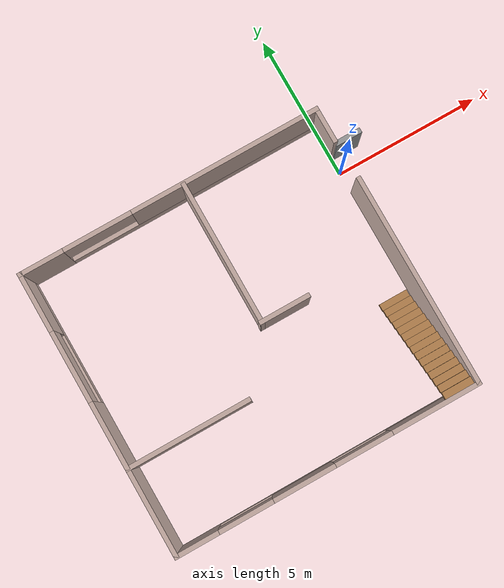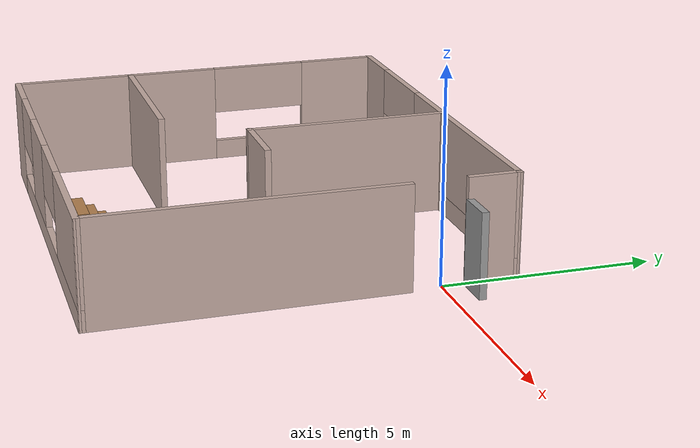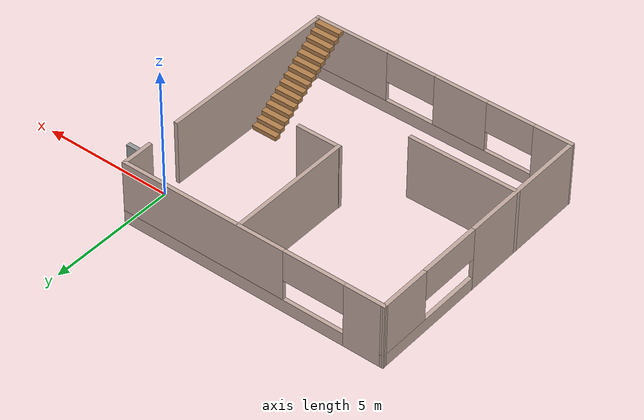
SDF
<?xml version='1.0'?>
<sdf version='1.7'>
  <model name='room2'>
    <pose>-5.09563 -3.06584 0 0 -0 0</pose>
    <link name='Door_0'>
      <collision name='Door_0_Collision'>
        <geometry>
          <box>
            <size>0.9 0.17 2</size>
          </box>
        </geometry>
        <pose>0 0 1 0 -0 0</pose>
      </collision>
      <visual name='Door_0_Visual'>
        <pose>0 0 1 0 -0 0</pose>
        <geometry>
          <box>
            <size>0.9 0.17 2</size>
          </box>
        </geometry>
        <material>
          <script>
            <uri>file://media/materials/scripts/gazebo.material</uri>
            <name>Gazebo/Grey</name>
          </script>
        </material>
      </visual>
      <pose>5.59901 3.66029 0 0 -0 0</pose>
    </link>
    <link name='Stairs_0'>
      <visual name='Stairs_0_Visual_0'>
        <pose>4.54808 -1.34936 0.083333 0 -0 0</pose>
        <geometry>
          <box>
            <size>1 0.233333 0.166667</size>
          </box>
        </geometry>
        <material>
          <script>
            <uri>file://media/materials/scripts/gazebo.material</uri>
            <name>Gazebo/Wood</name>
          </script>
          <ambient>1 1 1 1</ambient>
        </material>
        <meta>
          <layer>0</layer>
        </meta>
      </visual>
      <collision name='Stairs_0_Collision_0'>
        <geometry>
          <box>
            <size>1 0.233333 0.166667</size>
          </box>
        </geometry>
        <pose>4.54808 -1.34936 0.083333 0 -0 0</pose>
      </collision>
      <visual name='Stairs_0_Visual_1'>
        <pose>4.54808 -1.5827 0.25 0 -0 0</pose>
        <geometry>
          <box>
            <size>1 0.233333 0.166667</size>
          </box>
        </geometry>
        <material>
          <script>
            <uri>file://media/materials/scripts/gazebo.material</uri>
            <name>Gazebo/Wood</name>
          </script>
          <ambient>1 1 1 1</ambient>
        </material>
        <meta>
          <layer>0</layer>
        </meta>
      </visual>
      <collision name='Stairs_0_Collision_1'>
        <geometry>
          <box>
            <size>1 0.233333 0.166667</size>
          </box>
        </geometry>
        <pose>4.54808 -1.5827 0.25 0 -0 0</pose>
      </collision>
      <visual name='Stairs_0_Visual_2'>
        <pose>4.54808 -1.81603 0.416667 0 -0 0</pose>
        <geometry>
          <box>
            <size>1 0.233333 0.166667</size>
          </box>
        </geometry>
        <material>
          <script>
            <uri>file://media/materials/scripts/gazebo.material</uri>
            <name>Gazebo/Wood</name>
          </script>
          <ambient>1 1 1 1</ambient>
        </material>
        <meta>
          <layer>0</layer>
        </meta>
      </visual>
      <collision name='Stairs_0_Collision_2'>
        <geometry>
          <box>
            <size>1 0.233333 0.166667</size>
          </box>
        </geometry>
        <pose>4.54808 -1.81603 0.416667 0 -0 0</pose>
      </collision>
      <visual name='Stairs_0_Visual_3'>
        <pose>4.54808 -2.04936 0.583333 0 -0 0</pose>
        <geometry>
          <box>
            <size>1 0.233333 0.166667</size>
          </box>
        </geometry>
        <material>
          <script>
            <uri>file://media/materials/scripts/gazebo.material</uri>
            <name>Gazebo/Wood</name>
          </script>
          <ambient>1 1 1 1</ambient>
        </material>
        <meta>
          <layer>0</layer>
        </meta>
      </visual>
      <collision name='Stairs_0_Collision_3'>
        <geometry>
          <box>
            <size>1 0.233333 0.166667</size>
          </box>
        </geometry>
        <pose>4.54808 -2.04936 0.583333 0 -0 0</pose>
      </collision>
      <visual name='Stairs_0_Visual_4'>
        <pose>4.54808 -2.2827 0.75 0 -0 0</pose>
        <geometry>
          <box>
            <size>1 0.233333 0.166667</size>
          </box>
        </geometry>
        <material>
          <script>
            <uri>file://media/materials/scripts/gazebo.material</uri>
            <name>Gazebo/Wood</name>
          </script>
          <ambient>1 1 1 1</ambient>
        </material>
        <meta>
          <layer>0</layer>
        </meta>
      </visual>
      <collision name='Stairs_0_Collision_4'>
        <geometry>
          <box>
            <size>1 0.233333 0.166667</size>
          </box>
        </geometry>
        <pose>4.54808 -2.2827 0.75 0 -0 0</pose>
      </collision>
      <visual name='Stairs_0_Visual_5'>
        <pose>4.54808 -2.51603 0.916667 0 -0 0</pose>
        <geometry>
          <box>
            <size>1 0.233333 0.166667</size>
          </box>
        </geometry>
        <material>
          <script>
            <uri>file://media/materials/scripts/gazebo.material</uri>
            <name>Gazebo/Wood</name>
          </script>
          <ambient>1 1 1 1</ambient>
        </material>
        <meta>
          <layer>0</layer>
        </meta>
      </visual>
      <collision name='Stairs_0_Collision_5'>
        <geometry>
          <box>
            <size>1 0.233333 0.166667</size>
          </box>
        </geometry>
        <pose>4.54808 -2.51603 0.916667 0 -0 0</pose>
      </collision>
      <visual name='Stairs_0_Visual_6'>
        <pose>4.54808 -2.74936 1.08333 0 -0 0</pose>
        <geometry>
          <box>
            <size>1 0.233333 0.166667</size>
          </box>
        </geometry>
        <material>
          <script>
            <uri>file://media/materials/scripts/gazebo.material</uri>
            <name>Gazebo/Wood</name>
          </script>
          <ambient>1 1 1 1</ambient>
        </material>
        <meta>
          <layer>0</layer>
        </meta>
      </visual>
      <collision name='Stairs_0_Collision_6'>
        <geometry>
          <box>
            <size>1 0.233333 0.166667</size>
          </box>
        </geometry>
        <pose>4.54808 -2.74936 1.08333 0 -0 0</pose>
      </collision>
      <visual name='Stairs_0_Visual_7'>
        <pose>4.54808 -2.9827 1.25 0 -0 0</pose>
        <geometry>
          <box>
            <size>1 0.233333 0.166667</size>
          </box>
        </geometry>
        <material>
          <script>
            <uri>file://media/materials/scripts/gazebo.material</uri>
            <name>Gazebo/Wood</name>
          </script>
          <ambient>1 1 1 1</ambient>
        </material>
        <meta>
          <layer>0</layer>
        </meta>
      </visual>
      <collision name='Stairs_0_Collision_7'>
        <geometry>
          <box>
            <size>1 0.233333 0.166667</size>
          </box>
        </geometry>
        <pose>4.54808 -2.9827 1.25 0 -0 0</pose>
      </collision>
      <visual name='Stairs_0_Visual_8'>
        <pose>4.54808 -3.21603 1.41667 0 -0 0</pose>
        <geometry>
          <box>
            <size>1 0.233333 0.166667</size>
          </box>
        </geometry>
        <material>
          <script>
            <uri>file://media/materials/scripts/gazebo.material</uri>
            <name>Gazebo/Wood</name>
          </script>
          <ambient>1 1 1 1</ambient>
        </material>
        <meta>
          <layer>0</layer>
        </meta>
      </visual>
      <collision name='Stairs_0_Collision_8'>
        <geometry>
          <box>
            <size>1 0.233333 0.166667</size>
          </box>
        </geometry>
        <pose>4.54808 -3.21603 1.41667 0 -0 0</pose>
      </collision>
      <visual name='Stairs_0_Visual_9'>
        <pose>4.54808 -3.44936 1.58333 0 -0 0</pose>
        <geometry>
          <box>
            <size>1 0.233333 0.166667</size>
          </box>
        </geometry>
        <material>
          <script>
            <uri>file://media/materials/scripts/gazebo.material</uri>
            <name>Gazebo/Wood</name>
          </script>
          <ambient>1 1 1 1</ambient>
        </material>
        <meta>
          <layer>0</layer>
        </meta>
      </visual>
      <collision name='Stairs_0_Collision_9'>
        <geometry>
          <box>
            <size>1 0.233333 0.166667</size>
          </box>
        </geometry>
        <pose>4.54808 -3.44936 1.58333 0 -0 0</pose>
      </collision>
      <visual name='Stairs_0_Visual_10'>
        <pose>4.54808 -3.6827 1.75 0 -0 0</pose>
        <geometry>
          <box>
            <size>1 0.233333 0.166667</size>
          </box>
        </geometry>
        <material>
          <script>
            <uri>file://media/materials/scripts/gazebo.material</uri>
            <name>Gazebo/Wood</name>
          </script>
          <ambient>1 1 1 1</ambient>
        </material>
        <meta>
          <layer>0</layer>
        </meta>
      </visual>
      <collision name='Stairs_0_Collision_10'>
        <geometry>
          <box>
            <size>1 0.233333 0.166667</size>
          </box>
        </geometry>
        <pose>4.54808 -3.6827 1.75 0 -0 0</pose>
      </collision>
      <visual name='Stairs_0_Visual_11'>
        <pose>4.54808 -3.91603 1.91667 0 -0 0</pose>
        <geometry>
          <box>
            <size>1 0.233333 0.166667</size>
          </box>
        </geometry>
        <material>
          <script>
            <uri>file://media/materials/scripts/gazebo.material</uri>
            <name>Gazebo/Wood</name>
          </script>
          <ambient>1 1 1 1</ambient>
        </material>
        <meta>
          <layer>0</layer>
        </meta>
      </visual>
      <collision name='Stairs_0_Collision_11'>
        <geometry>
          <box>
            <size>1 0.233333 0.166667</size>
          </box>
        </geometry>
        <pose>4.54808 -3.91603 1.91667 0 -0 0</pose>
      </collision>
      <visual name='Stairs_0_Visual_12'>
        <pose>4.54808 -4.14936 2.08333 0 -0 0</pose>
        <geometry>
          <box>
            <size>1 0.233333 0.166667</size>
          </box>
        </geometry>
        <material>
          <script>
            <uri>file://media/materials/scripts/gazebo.material</uri>
            <name>Gazebo/Wood</name>
          </script>
          <ambient>1 1 1 1</ambient>
        </material>
        <meta>
          <layer>0</layer>
        </meta>
      </visual>
      <collision name='Stairs_0_Collision_12'>
        <geometry>
          <box>
            <size>1 0.233333 0.166667</size>
          </box>
        </geometry>
        <pose>4.54808 -4.14936 2.08333 0 -0 0</pose>
      </collision>
      <visual name='Stairs_0_Visual_13'>
        <pose>4.54808 -4.3827 2.25 0 -0 0</pose>
        <geometry>
          <box>
            <size>1 0.233333 0.166667</size>
          </box>
        </geometry>
        <material>
          <script>
            <uri>file://media/materials/scripts/gazebo.material</uri>
            <name>Gazebo/Wood</name>
          </script>
          <ambient>1 1 1 1</ambient>
        </material>
        <meta>
          <layer>0</layer>
        </meta>
      </visual>
      <collision name='Stairs_0_Collision_13'>
        <geometry>
          <box>
            <size>1 0.233333 0.166667</size>
          </box>
        </geometry>
        <pose>4.54808 -4.3827 2.25 0 -0 0</pose>
      </collision>
      <visual name='Stairs_0_Visual_14'>
        <pose>4.54808 -4.61603 2.41667 0 -0 0</pose>
        <geometry>
          <box>
            <size>1 0.233333 0.166667</size>
          </box>
        </geometry>
        <material>
          <script>
            <uri>file://media/materials/scripts/gazebo.material</uri>
            <name>Gazebo/Wood</name>
          </script>
          <ambient>1 1 1 1</ambient>
        </material>
        <meta>
          <layer>0</layer>
        </meta>
      </visual>
      <collision name='Stairs_0_Collision_14'>
        <geometry>
          <box>
            <size>1 0.233333 0.166667</size>
          </box>
        </geometry>
        <pose>4.54808 -4.61603 2.41667 0 -0 0</pose>
      </collision>
    </link>
    <link name='Wall_0'>
      <pose>0.020197 -4.8 0 0 -0 -0.00169</pose>
      <visual name='Wall_0_Visual_0'>
        <pose>-4.46751 0 1.25 0 -0 0</pose>
        <geometry>
          <box>
            <size>1.50417 0.15 2.5</size>
          </box>
        </geometry>
        <material>
          <script>
            <uri>file://media/materials/scripts/gazebo.material</uri>
            <name>Gazebo/Grey</name>
          </script>
          <ambient>0.760784 0.662745 0.627451 1</ambient>
        </material>
        <meta>
          <layer>0</layer>
        </meta>
      </visual>
      <collision name='Wall_0_Collision_0'>
        <geometry>
          <box>
            <size>1.50417 0.15 2.5</size>
          </box>
        </geometry>
        <pose>-4.46751 0 1.25 0 -0 0</pose>
      </collision>
      <visual name='Wall_0_Visual_1'>
        <pose>0.752085 0 0.25 0 -0 0</pose>
        <geometry>
          <box>
            <size>8.93502 0.15 0.5</size>
          </box>
        </geometry>
        <material>
          <script>
            <uri>file://media/materials/scripts/gazebo.material</uri>
            <name>Gazebo/Grey</name>
          </script>
          <ambient>0.760784 0.662745 0.627451 1</ambient>
        </material>
        <meta>
          <layer>0</layer>
        </meta>
      </visual>
      <collision name='Wall_0_Collision_1'>
        <geometry>
          <box>
            <size>8.93502 0.15 0.5</size>
          </box>
        </geometry>
        <pose>0.752085 0 0.25 0 -0 0</pose>
      </collision>
      <visual name='Wall_0_Visual_2'>
        <pose>-0.820202 0 1.5 0 -0 0</pose>
        <geometry>
          <box>
            <size>2.10479 0.15 2</size>
          </box>
        </geometry>
        <material>
          <script>
            <uri>file://media/materials/scripts/gazebo.material</uri>
            <name>Gazebo/Grey</name>
          </script>
          <ambient>0.760784 0.662745 0.627451 1</ambient>
        </material>
        <meta>
          <layer>0</layer>
        </meta>
      </visual>
      <collision name='Wall_0_Collision_2'>
        <geometry>
          <box>
            <size>2.10479 0.15 2</size>
          </box>
        </geometry>
        <pose>-0.820202 0 1.5 0 -0 0</pose>
      </collision>
      <visual name='Wall_0_Visual_3'>
        <pose>3.69979 0 1.5 0 -0 0</pose>
        <geometry>
          <box>
            <size>3.03961 0.15 2</size>
          </box>
        </geometry>
        <material>
          <script>
            <uri>file://media/materials/scripts/gazebo.material</uri>
            <name>Gazebo/Grey</name>
          </script>
          <ambient>0.760784 0.662745 0.627451 1</ambient>
        </material>
        <meta>
          <layer>0</layer>
        </meta>
      </visual>
      <collision name='Wall_0_Collision_3'>
        <geometry>
          <box>
            <size>3.03961 0.15 2</size>
          </box>
        </geometry>
        <pose>3.69979 0 1.5 0 -0 0</pose>
      </collision>
      <visual name='Wall_0_Visual_4'>
        <pose>-2.79401 0 1.9 0 -0 0</pose>
        <geometry>
          <box>
            <size>1.84283 0.15 1.2</size>
          </box>
        </geometry>
        <material>
          <script>
            <uri>file://media/materials/scripts/gazebo.material</uri>
            <name>Gazebo/Grey</name>
          </script>
          <ambient>0.760784 0.662745 0.627451 1</ambient>
        </material>
        <meta>
          <layer>0</layer>
        </meta>
      </visual>
      <collision name='Wall_0_Collision_4'>
        <geometry>
          <box>
            <size>1.84283 0.15 1.2</size>
          </box>
        </geometry>
        <pose>-2.79401 0 1.9 0 -0 0</pose>
      </collision>
      <visual name='Wall_0_Visual_5'>
        <pose>1.20609 0 1.9 0 -0 0</pose>
        <geometry>
          <box>
            <size>1.94779 0.15 1.2</size>
          </box>
        </geometry>
        <material>
          <script>
            <uri>file://media/materials/scripts/gazebo.material</uri>
            <name>Gazebo/Grey</name>
          </script>
          <ambient>0.760784 0.662745 0.627451 1</ambient>
        </material>
        <meta>
          <layer>0</layer>
        </meta>
      </visual>
      <collision name='Wall_0_Collision_5'>
        <geometry>
          <box>
            <size>1.94779 0.15 1.2</size>
          </box>
        </geometry>
        <pose>1.20609 0 1.9 0 -0 0</pose>
      </collision>
    </link>
    <link name='Wall_10'>
      <collision name='Wall_10_Collision'>
        <geometry>
          <box>
            <size>1.75 0.15 2.5</size>
          </box>
        </geometry>
        <pose>0 0 1.25 0 -0 0</pose>
      </collision>
      <visual name='Wall_10_Visual'>
        <pose>0 0 1.25 0 -0 0</pose>
        <geometry>
          <box>
            <size>1.75 0.15 2.5</size>
          </box>
        </geometry>
        <material>
          <script>
            <uri>file://media/materials/scripts/gazebo.material</uri>
            <name>Gazebo/Grey</name>
          </script>
          <ambient>0.760784 0.662745 0.627451 1</ambient>
        </material>
        <meta>
          <layer>0</layer>
        </meta>
      </visual>
      <pose>1.23583 -0.025594 0 0 -0 0</pose>
    </link>
    <link name='Wall_17'>
      <collision name='Wall_17_Collision'>
        <geometry>
          <box>
            <size>4.25 0.15 2.5</size>
          </box>
        </geometry>
        <pose>0 0 1.25 0 -0 0</pose>
      </collision>
      <visual name='Wall_17_Visual'>
        <pose>0 0 1.25 0 -0 0</pose>
        <geometry>
          <box>
            <size>4.25 0.15 2.5</size>
          </box>
        </geometry>
        <material>
          <script>
            <uri>file://media/materials/scripts/gazebo.material</uri>
            <name>Gazebo/Grey</name>
          </script>
          <ambient>0.760784 0.662745 0.627451 1</ambient>
        </material>
        <meta>
          <layer>0</layer>
        </meta>
      </visual>
      <pose>-3.08733 -1.85552 0 0 -0 0</pose>
    </link>
    <link name='Wall_2'>
      <pose>-5.14448 0.008696 0 0 -0 1.575</pose>
      <visual name='Wall_2_Visual_0'>
        <pose>-2.23354 0 1.25 0 -0 0</pose>
        <geometry>
          <box>
            <size>5.24822 0.15 2.5</size>
          </box>
        </geometry>
        <material>
          <script>
            <uri>file://media/materials/scripts/gazebo.material</uri>
            <name>Gazebo/Grey</name>
          </script>
          <ambient>0.760784 0.662745 0.627451 1</ambient>
        </material>
        <meta>
          <layer>0</layer>
        </meta>
      </visual>
      <collision name='Wall_2_Collision_0'>
        <geometry>
          <box>
            <size>5.24822 0.15 2.5</size>
          </box>
        </geometry>
        <pose>-2.23354 0 1.25 0 -0 0</pose>
      </collision>
      <visual name='Wall_2_Visual_1'>
        <pose>2.62411 0 0.25 0 -0 0</pose>
        <geometry>
          <box>
            <size>4.46709 0.15 0.5</size>
          </box>
        </geometry>
        <material>
          <script>
            <uri>file://media/materials/scripts/gazebo.material</uri>
            <name>Gazebo/Grey</name>
          </script>
          <ambient>0.760784 0.662745 0.627451 1</ambient>
        </material>
        <meta>
          <layer>0</layer>
        </meta>
      </visual>
      <collision name='Wall_2_Collision_1'>
        <geometry>
          <box>
            <size>4.46709 0.15 0.5</size>
          </box>
        </geometry>
        <pose>2.62411 0 0.25 0 -0 0</pose>
      </collision>
      <visual name='Wall_2_Visual_2'>
        <pose>3.83298 0 1.5 0 -0 0</pose>
        <geometry>
          <box>
            <size>2.04934 0.15 2</size>
          </box>
        </geometry>
        <material>
          <script>
            <uri>file://media/materials/scripts/gazebo.material</uri>
            <name>Gazebo/Grey</name>
          </script>
          <ambient>0.760784 0.662745 0.627451 1</ambient>
        </material>
        <meta>
          <layer>0</layer>
        </meta>
      </visual>
      <collision name='Wall_2_Collision_2'>
        <geometry>
          <box>
            <size>2.04934 0.15 2</size>
          </box>
        </geometry>
        <pose>3.83298 0 1.5 0 -0 0</pose>
      </collision>
      <visual name='Wall_2_Visual_3'>
        <pose>1.59943 0 1.9 0 -0 0</pose>
        <geometry>
          <box>
            <size>2.41774 0.15 1.2</size>
          </box>
        </geometry>
        <material>
          <script>
            <uri>file://media/materials/scripts/gazebo.material</uri>
            <name>Gazebo/Grey</name>
          </script>
          <ambient>0.760784 0.662745 0.627451 1</ambient>
        </material>
        <meta>
          <layer>0</layer>
        </meta>
      </visual>
      <collision name='Wall_2_Collision_3'>
        <geometry>
          <box>
            <size>2.41774 0.15 1.2</size>
          </box>
        </geometry>
        <pose>1.59943 0 1.9 0 -0 0</pose>
      </collision>
    </link>
    <link name='Wall_4'>
      <pose>-0.028726 4.8 0 0 -0 0.001693</pose>
      <visual name='Wall_4_Visual_0'>
        <pose>-4.43442 0 1.25 0 -0 0</pose>
        <geometry>
          <box>
            <size>1.55291 0.15 2.5</size>
          </box>
        </geometry>
        <material>
          <script>
            <uri>file://media/materials/scripts/gazebo.material</uri>
            <name>Gazebo/Grey</name>
          </script>
          <ambient>0.760784 0.662745 0.627451 1</ambient>
        </material>
        <meta>
          <layer>0</layer>
        </meta>
      </visual>
      <collision name='Wall_4_Collision_0'>
        <geometry>
          <box>
            <size>1.55291 0.15 2.5</size>
          </box>
        </geometry>
        <pose>-4.43442 0 1.25 0 -0 0</pose>
      </collision>
      <visual name='Wall_4_Visual_1'>
        <pose>0.776454 0 0.25 0 -0 0</pose>
        <geometry>
          <box>
            <size>8.86885 0.15 0.5</size>
          </box>
        </geometry>
        <material>
          <script>
            <uri>file://media/materials/scripts/gazebo.material</uri>
            <name>Gazebo/Grey</name>
          </script>
          <ambient>0.760784 0.662745 0.627451 1</ambient>
        </material>
        <meta>
          <layer>0</layer>
        </meta>
      </visual>
      <collision name='Wall_4_Collision_1'>
        <geometry>
          <box>
            <size>8.86885 0.15 0.5</size>
          </box>
        </geometry>
        <pose>0.776454 0 0.25 0 -0 0</pose>
      </collision>
      <visual name='Wall_4_Visual_2'>
        <pose>1.9505 0 1.5 0 -0 0</pose>
        <geometry>
          <box>
            <size>6.52076 0.15 2</size>
          </box>
        </geometry>
        <material>
          <script>
            <uri>file://media/materials/scripts/gazebo.material</uri>
            <name>Gazebo/Grey</name>
          </script>
          <ambient>0.760784 0.662745 0.627451 1</ambient>
        </material>
        <meta>
          <layer>0</layer>
        </meta>
      </visual>
      <collision name='Wall_4_Collision_2'>
        <geometry>
          <box>
            <size>6.52076 0.15 2</size>
          </box>
        </geometry>
        <pose>1.9505 0 1.5 0 -0 0</pose>
      </collision>
      <visual name='Wall_4_Visual_3'>
        <pose>-2.48392 0 1.9 0 -0 0</pose>
        <geometry>
          <box>
            <size>2.34809 0.15 1.2</size>
          </box>
        </geometry>
        <material>
          <script>
            <uri>file://media/materials/scripts/gazebo.material</uri>
            <name>Gazebo/Grey</name>
          </script>
          <ambient>0.760784 0.662745 0.627451 1</ambient>
        </material>
        <meta>
          <layer>0</layer>
        </meta>
      </visual>
      <collision name='Wall_4_Collision_3'>
        <geometry>
          <box>
            <size>2.34809 0.15 1.2</size>
          </box>
        </geometry>
        <pose>-2.48392 0 1.9 0 -0 0</pose>
      </collision>
    </link>
    <link name='Wall_5'>
      <collision name='Wall_5_Collision'>
        <geometry>
          <box>
            <size>1.25 0.15 2.5</size>
          </box>
        </geometry>
        <pose>0 0 1.25 0 -0 0</pose>
      </collision>
      <visual name='Wall_5_Visual'>
        <pose>0 0 1.25 0 -0 0</pose>
        <geometry>
          <box>
            <size>1.25 0.15 2.5</size>
          </box>
        </geometry>
        <material>
          <script>
            <uri>file://media/materials/scripts/gazebo.material</uri>
            <name>Gazebo/Grey</name>
          </script>
          <ambient>0.760784 0.662745 0.627451 1</ambient>
        </material>
        <meta>
          <layer>0</layer>
        </meta>
      </visual>
      <pose>5.10714 4.2413 0 0 -0 -1.5708</pose>
    </link>
    <link name='Wall_7'>
      <collision name='Wall_7_Collision'>
        <geometry>
          <box>
            <size>7.23261 0.15 2.5</size>
          </box>
        </geometry>
        <pose>0 0 1.25 0 -0 0</pose>
      </collision>
      <visual name='Wall_7_Visual'>
        <pose>0 0 1.25 0 -0 0</pose>
        <geometry>
          <box>
            <size>7.23261 0.15 2.5</size>
          </box>
        </geometry>
        <material>
          <script>
            <uri>file://media/materials/scripts/gazebo.material</uri>
            <name>Gazebo/Grey</name>
          </script>
          <ambient>0.760784 0.662745 0.627451 1</ambient>
        </material>
        <meta>
          <layer>0</layer>
        </meta>
      </visual>
      <pose>5.16476 -1.25 0 0 -0 1.5708</pose>
    </link>
    <link name='Wall_9'>
      <collision name='Wall_9_Collision'>
        <geometry>
          <box>
            <size>4.93056 0.15 2.5</size>
          </box>
        </geometry>
        <pose>0 0 1.25 0 -0 0</pose>
      </collision>
      <visual name='Wall_9_Visual'>
        <pose>0 0 1.25 0 -0 0</pose>
        <geometry>
          <box>
            <size>4.93056 0.15 2.5</size>
          </box>
        </geometry>
        <material>
          <script>
            <uri>file://media/materials/scripts/gazebo.material</uri>
            <name>Gazebo/Grey</name>
          </script>
          <ambient>0.760784 0.662745 0.627451 1</ambient>
        </material>
        <meta>
          <layer>0</layer>
        </meta>
      </visual>
      <pose>0.453219 2.36462 0 0 -0 -1.5708</pose>
    </link>
    <static>1</static>
  </model>
</sdf>
